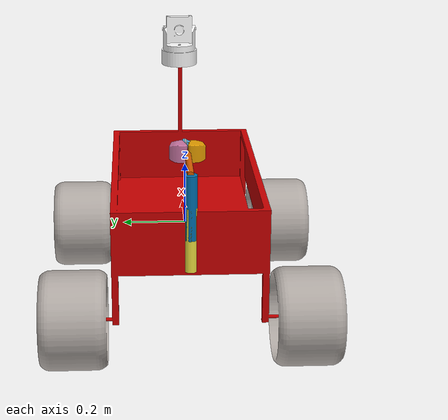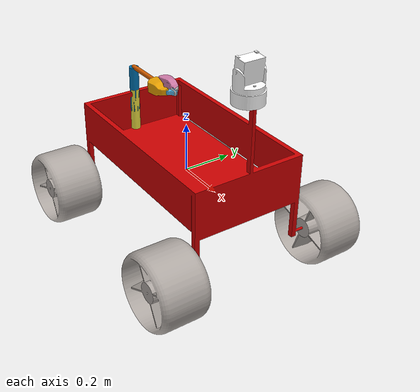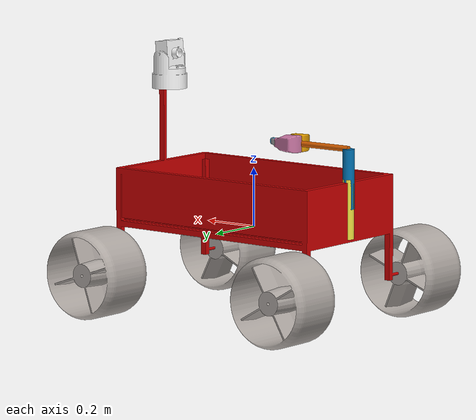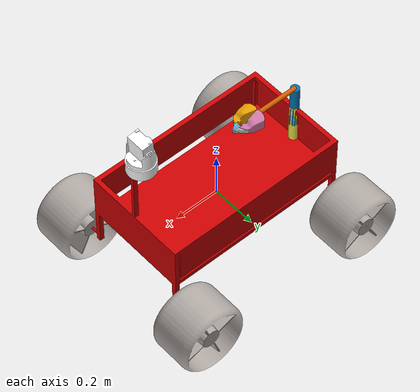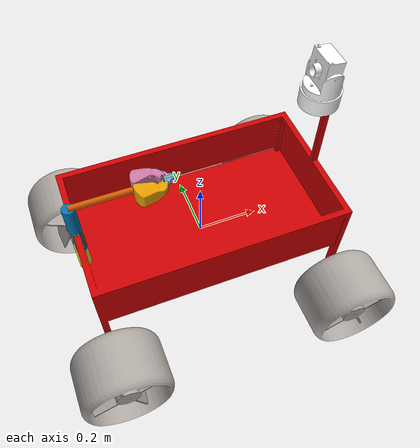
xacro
<?xml version="1.0" encoding="utf-8"?>
<robot xmlns:xacro="http://www.ros.org/wiki/xacro" name="URDFtestwithcam">

  <material name="blue">
    <color rgba="0 0 0.8 1"/>
  </material>

  <material name="white">
    <color rgba="1 1 1 1"/>
  </material>

  <material name="red">
    <color rgba="0.8 0 0 1"/>
  </material>

	<link name="base_link"></link>

  <link name="base">
    <inertial>
      <origin
        xyz="0.0052811 0.064297 -0.0088091"
        rpy="0 0 0" />
      <mass
        value="13.77" />
      <inertia
        ixx="0.14162"
        ixy="-7.334E-17"
        ixz="3.7952E-11"
        iyy="0.63119"
        iyz="0.00036178"
        izz="0.53062" />
    </inertial>
    <visual>
      <origin
        xyz="0 0 0"
        rpy="0 0 0" />
      <geometry>
        <mesh
          filename="package://URDFtestwithcam/meshes/base.STL" />
      </geometry>
      <material name="red"/>
    </visual>
    <collision>
      <origin
        xyz="0 0 0"
        rpy="0 0 0" />
      <geometry>
        <mesh
          filename="package://URDFtestwithcam/meshes/base.STL" />
      </geometry>
    </collision>
  </link>

  <joint name="dummy_to_base" type="fixed">
  	<origin xyz="0 0 0" rpy="1.57 0 0"/>
  	<parent link="base_link"/>
  	<child link="base"/>
  </joint>

  <link name="one">
    <inertial>
      <origin
        xyz="0 -5.55111512312578E-17 -6.93889390390723E-17"
        rpy="0 0 0" />
      <mass
        value="18.522197740641" />
      <inertia
        ixx="0.175515725875798"
        ixy="-3.73056609646052E-17"
        ixz="-7.97826013903642E-17"
        iyy="0.175515725875798"
        iyz="3.93262024862155E-17"
        izz="0.264143297899433" />
    </inertial>
    <visual>
      <origin
        xyz="0 0 0"
        rpy="0 0 0" />
      <geometry>
        <mesh
          filename="package://URDFtestwithcam/meshes/one.STL" />
      </geometry>
      <material
        name="">
        <color
          rgba="0.686274509803922 0.658823529411765 0.63921568627451 1" />
      </material>
    </visual>
    <collision>
      <origin
        xyz="0 0 0"
        rpy="0 0 0" />
      <geometry>
        <mesh
          filename="package://URDFtestwithcam/meshes/one.STL" />
      </geometry>
    </collision>
  </link>

<!-- gripper -->
  <xacro:property name="width" value="0.2" />
  <xacro:property name="polelen" value="0.2" />
  <xacro:property name="poleht" value="0.2" />
  <xacro:macro name="default_inertial" params="mass">
    <inertial>
      <mass value="${mass}" />
      <inertia ixx="1.0" ixy="0.0" ixz="0.0" iyy="1.0" iyz="0.0" izz="1.0" />
    </inertial>
  </xacro:macro>

  <link name="gripper_base_fixed">
    <visual>
      <geometry>
        <cylinder length="${poleht}" radius="0.02"/>
      </geometry>
    </visual>
    <origin xyz="0 0 0"/>
    <xacro:default_inertial mass="0.05"/>
    <collision>
      <geometry>
        <cylinder length="${poleht}" radius="0.02"/>
      </geometry>
    </collision>
  </link>

  <link name="gripper_base_move">
    <visual>
      <geometry>
        <cylinder length="${poleht}" radius="0.02"/>
      </geometry>
    </visual>
    <origin xyz="0 0 0"/>
    <xacro:default_inertial mass="0.05"/>
    <collision>
      <geometry>
        <cylinder length="${poleht}" radius="0.02"/>
      </geometry>
    </collision>
  </link>

  <joint name="base_link_to_gripper_base_fixed" type="fixed">
    <parent link="base_link"/>
    <child link="gripper_base_fixed"/>
    <origin xyz="-0.4 0 ${poleht/2}"/>
    <limit effort="30" velocity="0.2"/>
    <dynamics damping="0.0" friction="0.0"/>
  </joint>

  <joint name="base_link_to_gripper_base_move" type="revolute">
    <axis xyz="0 1 0"/>
    <parent link="base_link"/>
    <child link="gripper_base_move"/>
    <origin xyz="-0.4 0 ${poleht}"/>
    <limit effort="30" lower="0" upper="${pi/4*-1}" velocity="0.2"/>
    <dynamics damping="0.0" friction="0.0"/>
  </joint>

  <transmission name="gripper_arm">
    <type>transmission_interface/SimpleTransmission</type>
    <actuator name="gripper_arm_motor">
      <mechanicalReduction>1</mechanicalReduction>
    </actuator>
    <joint name="base_link_to_gripper_base_move">
      <hardwareInterface>PositionJointInterface</hardwareInterface>
    </joint>
  </transmission>

  <joint name="gripper_extension" type="continuous">
    <axis xyz="0 0 1"/>
    <parent link="gripper_base_move"/>
    <child link="gripper_pole"/>
    <limit effort="1000.0" velocity="0.5"/>
    <origin rpy="0 0 0" xyz="0 0 ${poleht/2}"/>
    <limit effort="30" velocity="0.2"/>
    <dynamics damping="0.0" friction="0.0"/>
  </joint>

  <link name="gripper_pole">
    <visual>
      <geometry>
        <cylinder length="${polelen}" radius="0.01"/>
      </geometry>
      <origin xyz="${polelen/2} 0 0" rpy="0 ${pi/2*-1} 0 "/>
    </visual>
    <collision>
      <geometry>
        <cylinder length="${polelen}" radius="0.01"/>
      </geometry>
      <origin xyz="${polelen/2} 0 0" rpy="0 ${pi/2} 0 "/>
    </collision>
    <xacro:default_inertial mass="0.05"/>
  </link>

  <transmission name="gripper_extension_trans">
    <type>transmission_interface/SimpleTransmission</type>
    <actuator name="gripper_extension_motor">
      <mechanicalReduction>1</mechanicalReduction>
    </actuator>
    <joint name="gripper_extension">
      <hardwareInterface>PositionJointInterface</hardwareInterface>
    </joint>
  </transmission>

  <xacro:macro name="gripper" params="prefix reflect">
    <joint name="${prefix}_gripper_joint" type="revolute">
      <axis xyz="0 0 ${reflect}"/>
      <limit effort="1000.0" lower="0.0" upper="0.548" velocity="0.5"/>
      <origin rpy="0 0 0" xyz="${polelen} ${reflect*0.01} 0"/>
      <parent link="gripper_pole"/>
      <child link="${prefix}_gripper"/>
      <limit effort="30" velocity="1.0"/>
      <dynamics damping="0.0" friction="0.0"/>
    </joint>
    <link name="${prefix}_gripper">
      <visual>
        <origin rpy="${(reflect-1)/2*pi} 0 0" xyz="0 0 0"/>
        <geometry>
          <mesh filename="package://urdf_tutorial/meshes/l_finger.dae"/>
        </geometry>
      </visual>
      <collision>
        <geometry>
          <mesh filename="package://urdf_tutorial/meshes/l_finger.dae"/>
        </geometry>
        <origin rpy="${(reflect-1)/2*pi} 0 0" xyz="0 0 0"/>
      </collision>
      <xacro:default_inertial mass="0.05"/>
    </link>
    <transmission name="${prefix}_gripper_trans">
      <type>transmission_interface/SimpleTransmission</type>
      <actuator name="${prefix}_gripper_motor">
        <mechanicalReduction>1</mechanicalReduction>
      </actuator>
      <joint name="${prefix}_gripper_joint">
        <hardwareInterface>PositionJointInterface</hardwareInterface>
      </joint>
    </transmission>

    <joint name="${prefix}_tip_joint" type="fixed">
      <parent link="${prefix}_gripper"/>
      <child link="${prefix}_tip"/>
    </joint>
    <link name="${prefix}_tip">
      <visual>
        <origin rpy="${(reflect-1)/2*pi} 0 0" xyz="0.09137 0.00495 0"/>
        <geometry>
          <mesh filename="package://urdf_tutorial/meshes/l_finger_tip.dae"/>
        </geometry>
      </visual>
      <collision>
        <geometry>
          <mesh filename="package://urdf_tutorial/meshes/l_finger_tip.dae"/>
        </geometry>
        <origin rpy="${(reflect-1)/2*pi} 0 0" xyz="0.09137 0.00495 0"/>
      </collision>
      <xacro:default_inertial mass="0.05"/>
    </link>
  </xacro:macro>

  <xacro:gripper prefix="left" reflect="1" />
  <xacro:gripper prefix="right" reflect="-1" />
<!-- gripper end -->

  <link name="two">
    <inertial>
      <origin
        xyz="0 1.66533453693773E-16 0"
        rpy="0 0 0" />
      <mass
        value="18.522197740641" />
      <inertia
        ixx="0.175515725875798"
        ixy="1.36341728909766E-17"
        ixz="-1.84075661983385E-17"
        iyy="0.175515725875798"
        iyz="4.08047204801776E-17"
        izz="0.264143297899433" />
    </inertial>
    <visual>
      <origin
        xyz="0 0 0"
        rpy="0 0 0" />
      <geometry>
        <mesh
          filename="package://URDFtestwithcam/meshes/two.STL" />
      </geometry>
      <material
        name="">
        <color
          rgba="0.686274509803922 0.658823529411765 0.63921568627451 1" />
      </material>
    </visual>
    <collision>
      <origin
        xyz="0 0 0"
        rpy="0 0 0" />
      <geometry>
        <mesh
          filename="package://URDFtestwithcam/meshes/two.STL" />
      </geometry>
    </collision>
  </link>

  <link name="three">
    <inertial>
      <origin
        xyz="0 0 0"
        rpy="0 0 0" />
      <mass
        value="18.522197740641" />
      <inertia
        ixx="0.175515725875798"
        ixy="-2.20513583343706E-17"
        ixz="-6.6914147002302E-18"
        iyy="0.175515725875798"
        iyz="2.15396436166859E-17"
        izz="0.264143297899434" />
    </inertial>
    <visual>
      <origin
        xyz="0 0 0"
        rpy="0 0 0" />
      <geometry>
        <mesh
          filename="package://URDFtestwithcam/meshes/three.STL" />
      </geometry>
      <material
        name="">
        <color
          rgba="0.686274509803922 0.658823529411765 0.63921568627451 1" />
      </material>
    </visual>
    <collision>
      <origin
        xyz="0 0 0"
        rpy="0 0 0" />
      <geometry>
        <mesh
          filename="package://URDFtestwithcam/meshes/three.STL" />
      </geometry>
    </collision>
  </link>

  <link name="four">
    <inertial>
      <origin
        xyz="-5.55111512312578E-17 -5.55111512312578E-17 1.38777878078145E-17"
        rpy="0 0 0" />
      <mass
        value="18.522197740641" />
      <inertia
        ixx="0.175515725875798"
        ixy="-3.94805912055889E-17"
        ixz="-1.61587524041896E-17"
        iyy="0.175515725875798"
        iyz="1.26567879060009E-17"
        izz="0.264143297899434" />
    </inertial>
    <visual>
      <origin
        xyz="0 0 0"
        rpy="0 0 0" />
      <geometry>
        <mesh
          filename="package://URDFtestwithcam/meshes/four.STL" />
      </geometry>
      <material
        name="">
        <color
          rgba="0.686274509803922 0.658823529411765 0.63921568627451 1" />
      </material>
    </visual>
    <collision>
      <origin
        xyz="0 0 0"
        rpy="0 0 0" />
      <geometry>
        <mesh
          filename="package://URDFtestwithcam/meshes/four.STL" />
      </geometry>
    </collision>
  </link>

  <xacro:macro name="revwheels" params="wheel_name org_x org_y org_z ax_z">
    <joint name="rev${wheel_name}" type="continuous">
      <origin xyz="${org_x*0.4} ${org_y*0.155} ${org_z*0.35}"/>
      <parent link="base"/>
      <child link="${wheel_name}"/>
      <axis xyz="0 0 ${ax_z}"/>
      <limit effort="1" velocity="0.5"/>
      <safety_controller k_velocity="0"/>
    </joint>

    <transmission name="${wheel_name}_wheel_trans">
      <type>transmission_interface/SimpleTransmission</type>
      <actuator name="${wheel_name}_wheel_motor">
        <mechanicalReduction>1</mechanicalReduction>
      </actuator>
      <joint name="rev${wheel_name}">
        <hardwareInterface>hardware_interface/VelocityJointInterface</hardwareInterface>
      </joint>
    </transmission>

  <gazebo reference="${wheel_name}">
    <mu1 value="200.0"/>
    <mu2 value="100.0"/>
    <kp value="10000000.0"/>
    <kd value="1.0"/>
    <material>Gazebo/Grey</material>
  </gazebo>

  <gazebo reference="base">
    <material>Gazebo/Red</material>
  </gazebo>

  </xacro:macro>
  <xacro:revwheels wheel_name="one" org_x="-1" org_y="-1" org_z="-1" ax_z="-1"/>
  <xacro:revwheels wheel_name="two" org_x="-1" org_y="-1" org_z="1" ax_z="-1"/>
  <xacro:revwheels wheel_name="three" org_x="1" org_y="-1" org_z="1" ax_z="-1"/>
  <xacro:revwheels wheel_name="four" org_x="1" org_y="-1" org_z="-1" ax_z="-1"/>

  <link name="five">
    <inertial>
      <origin
        xyz="0 0 0"
        rpy="0 0 0" />
      <mass
        value="0" />
      <inertia
        ixx="0"
        ixy="0"
        ixz="0"
        iyy="0"
        iyz="0"
        izz="0" />
    </inertial>
    <visual>
      <origin
        xyz="0 0 0"
        rpy="0 0 0" />
      <geometry>
        <mesh
          filename="package://URDFtestwithcam/meshes/five.STL" />
      </geometry>
      <material
        name="">
        <color
          rgba="1 1 1 1" />
      </material>
    </visual>
    <collision>
      <origin
        xyz="0 0 0"
        rpy="0 0 0" />
      <geometry>
        <mesh
          filename="package://URDFtestwithcam/meshes/five.STL" />
      </geometry>
    </collision>
  </link>

  <joint name="cam" type="fixed">
    <origin
      xyz="0.40396 0.63028 -0.033851"
      rpy="0 0 -0.081009" />
    <parent
      link="base" />
    <child
      link="five" />
    <axis
      xyz="0 0 0" />
    <safety_controller
      k_velocity="0" />
  </joint>

	<gazebo>
		<plugin name="gazebo_ros_control" filename="libgazebo_ros_control.so">
			<robotNamespace>/</robotNamespace>
		</plugin>
	</gazebo>

</robot>
